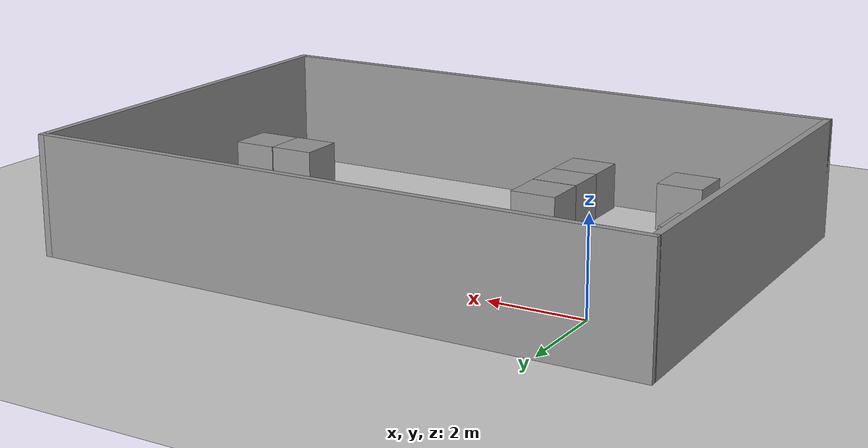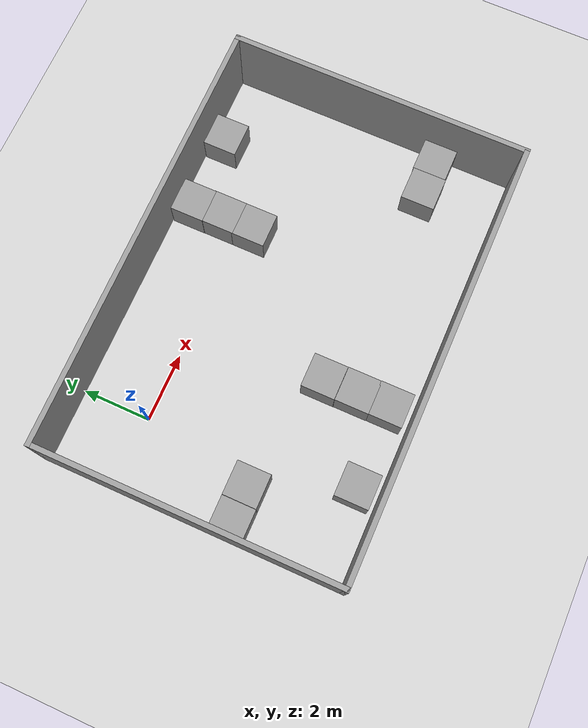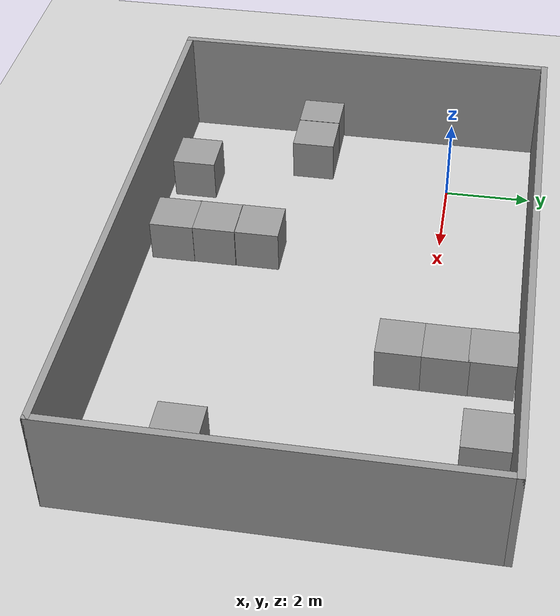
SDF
<sdf version="1.7">
 <world name="default">
  <light name="sun" type="directional">
   <pose>0 0 10 0 -0 0</pose>
   <diffuse>0.8 0.8 0.8 1</diffuse>
   <specular>0.2 0.2 0.2 1</specular>
   <attenuation>
    <range>1000</range>
    <constant>0.9</constant>
    <linear>0.01</linear>
    <quadratic>0.001</quadratic>
   </attenuation>
   <direction>-0.5 0.1 -0.9</direction>
   <spot><inner_angle>0</inner_angle><outer_angle>0</outer_angle><falloff>0</falloff></spot>
  </light>
  <model name="ground_plane">
   <static>1</static>
   <link name="link">
    <collision name="collision">
     <geometry><plane><normal>0 0 1</normal><size>100 100</size></plane></geometry>
     <surface>
      <contact><collide_bitmask>65535</collide_bitmask></contact>
      <friction><ode><mu>100</mu><mu2>50</mu2></ode></friction>
     </surface>
    </collision>
    <visual name="visual">
     <cast_shadows>0</cast_shadows>
     <geometry><plane><normal>0 0 1</normal><size>100 100</size></plane></geometry>
     <material>
      <script><uri>file://media/materials/scripts/gazebo.material</uri><name>Gazebo/Grey</name></script>
     </material>
    </visual>
   </link>
  </model>
  <gravity>0 0 -9.8</gravity>
  <magnetic_field>6e-06 2.3e-05 -4.2e-05</magnetic_field>
  <atmosphere type="adiabatic"/>
  <physics type="ode">
   <max_step_size>0.001</max_step_size>
   <real_time_factor>1</real_time_factor>
   <real_time_update_rate>1000</real_time_update_rate>
  </physics>
  <scene><ambient>0.4 0.4 0.4 1</ambient><background>0.7 0.7 0.7 1</background><shadows>1</shadows></scene>
  <spherical_coordinates>
   <surface_model>EARTH_WGS84</surface_model>
   <latitude_deg>0</latitude_deg>
   <longitude_deg>0</longitude_deg>
   <elevation>0</elevation>
   <heading_deg>0</heading_deg>
  </spherical_coordinates>
  <model name="Big_Wall">
   <pose>4.33163 -1.31472 0 0 -0 1.57</pose>
   <link name="Wall_13">
    <collision name="Wall_13_Collision">
     <geometry><box><size>13 0.15 2.5</size></box></geometry>
     <pose>0 0 1.25 0 -0 0</pose>
    </collision>
    <visual name="Wall_13_Visual">
     <pose>0 0 1.25 0 -0 0</pose>
     <geometry><box><size>13 0.15 2.5</size></box></geometry>
     <material>
      <script><uri>file://media/materials/scripts/gazebo.material</uri><name>Gazebo/Grey</name></script>
      <ambient>1 1 1 1</ambient>
     </material>
     <meta><layer>0</layer></meta>
    </visual>
    <pose>-5.47942 -0 0 0 -0 1.5708</pose>
   </link>
   <link name="Wall_14">
    <collision name="Wall_14_Collision">
     <geometry><box><size>9 0.15 2.5</size></box></geometry>
     <pose>0 0 1.25 0 -0 0</pose>
    </collision>
    <visual name="Wall_14_Visual">
     <pose>0 0 1.25 0 -0 0</pose>
     <geometry><box><size>9 0.15 2.5</size></box></geometry>
     <material>
      <script><uri>file://media/materials/scripts/gazebo.material</uri><name>Gazebo/Grey</name></script>
      <ambient>1 1 1 1</ambient>
     </material>
     <meta><layer>0</layer></meta>
    </visual>
    <pose>-1.05442 6.425 0 0 -0 0</pose>
   </link>
   <link name="Wall_18">
    <collision name="Wall_18_Collision">
     <geometry><box><size>13 0.15 2.5</size></box></geometry>
     <pose>0 0 1.25 0 -0 0</pose>
    </collision>
    <visual name="Wall_18_Visual">
     <pose>0 0 1.25 0 -0 0</pose>
     <geometry><box><size>13 0.15 2.5</size></box></geometry>
     <material>
      <script><uri>file://media/materials/scripts/gazebo.material</uri><name>Gazebo/Grey</name></script>
      <ambient>1 1 1 1</ambient>
     </material>
     <meta><layer>0</layer></meta>
    </visual>
    <pose>3.37059 -0 0 0 -0 -1.5708</pose>
   </link>
   <link name="Wall_20">
    <collision name="Wall_20_Collision">
     <geometry><box><size>9 0.15 2.5</size></box></geometry>
     <pose>0 0 1.25 0 -0 0</pose>
    </collision>
    <visual name="Wall_20_Visual">
     <pose>0 0 1.25 0 -0 0</pose>
     <geometry><box><size>9 0.15 2.5</size></box></geometry>
     <material>
      <script><uri>file://media/materials/scripts/gazebo.material</uri><name>Gazebo/Grey</name></script>
      <ambient>1 1 1 1</ambient>
     </material>
     <meta><layer>0</layer></meta>
    </visual>
    <pose>-1.05442 -6.425 0 0 -0 0</pose>
   </link>
   <static>1</static>
  </model>
  <model name="unit_box">
   <pose>6.19966 1.44935 0.5 0 -0 0</pose>
   <link name="link">
    <inertial>
     <mass>1</mass>
     <inertia>
      <ixx>0.166667</ixx>
      <ixy>0</ixy>
      <ixz>0</ixz>
      <iyy>0.166667</iyy>
      <iyz>0</iyz>
      <izz>0.166667</izz>
     </inertia>
    </inertial>
    <collision name="collision"><geometry><box><size>1 1 1</size></box></geometry></collision>
    <visual name="visual">
     <geometry><box><size>1 1 1</size></box></geometry>
     <material>
      <script><name>Gazebo/Grey</name><uri>file://media/materials/scripts/gazebo.material</uri></script>
     </material>
    </visual>
   </link>
  </model>
  <model name="unit_box_0">
   <pose>6.20658 0.493952 0.5 0 -0 0</pose>
   <link name="link">
    <inertial>
     <mass>1</mass>
     <inertia>
      <ixx>0.166667</ixx>
      <ixy>0</ixy>
      <ixz>0</ixz>
      <iyy>0.166667</iyy>
      <iyz>0</iyz>
      <izz>0.166667</izz>
     </inertia>
    </inertial>
    <collision name="collision"><geometry><box><size>1 1 1</size></box></geometry></collision>
    <visual name="visual">
     <geometry><box><size>1 1 1</size></box></geometry>
     <material>
      <script><name>Gazebo/Grey</name><uri>file://media/materials/scripts/gazebo.material</uri></script>
     </material>
    </visual>
   </link>
  </model>
  <model name="unit_box_1">
   <pose>6.20523 -0.470689 0.5 0 -0 0</pose>
   <link name="link">
    <inertial>
     <mass>1</mass>
     <inertia>
      <ixx>0.166667</ixx>
      <ixy>0</ixy>
      <ixz>0</ixz>
      <iyy>0.166667</iyy>
      <iyz>0</iyz>
      <izz>0.166667</izz>
     </inertia>
    </inertial>
    <collision name="collision"><geometry><box><size>1 1 1</size></box></geometry></collision>
    <visual name="visual">
     <geometry><box><size>1 1 1</size></box></geometry>
     <material>
      <script><name>Gazebo/Grey</name><uri>file://media/materials/scripts/gazebo.material</uri></script>
     </material>
    </visual>
   </link>
  </model>
  <model name="unit_box_2">
   <pose>2.93809 -6.05814 0.5 0 -0 0</pose>
   <link name="link">
    <inertial>
     <mass>1</mass>
     <inertia>
      <ixx>0.166667</ixx>
      <ixy>0</ixy>
      <ixz>0</ixz>
      <iyy>0.166667</iyy>
      <iyz>0</iyz>
      <izz>0.166667</izz>
     </inertia>
    </inertial>
    <collision name="collision"><geometry><box><size>1 1 1</size></box></geometry></collision>
    <visual name="visual">
     <geometry><box><size>1 1 1</size></box></geometry>
     <material>
      <script><name>Gazebo/Grey</name><uri>file://media/materials/scripts/gazebo.material</uri></script>
     </material>
    </visual>
   </link>
  </model>
  <model name="unit_box_3">
   <pose>2.92981 -5.08727 0.5 0 -0 0</pose>
   <link name="link">
    <inertial>
     <mass>1</mass>
     <inertia>
      <ixx>0.166667</ixx>
      <ixy>0</ixy>
      <ixz>0</ixz>
      <iyy>0.166667</iyy>
      <iyz>0</iyz>
      <izz>0.166667</izz>
     </inertia>
    </inertial>
    <collision name="collision"><geometry><box><size>1 1 1</size></box></geometry></collision>
    <visual name="visual">
     <geometry><box><size>1 1 1</size></box></geometry>
     <material>
      <script><name>Gazebo/Grey</name><uri>file://media/materials/scripts/gazebo.material</uri></script>
     </material>
    </visual>
   </link>
  </model>
  <model name="unit_box_4">
   <pose>2.92274 -4.08011 0.5 0 -0 0</pose>
   <link name="link">
    <inertial>
     <mass>1</mass>
     <inertia>
      <ixx>0.166667</ixx>
      <ixy>0</ixy>
      <ixz>0</ixz>
      <iyy>0.166667</iyy>
      <iyz>0</iyz>
      <izz>0.166667</izz>
     </inertia>
    </inertial>
    <collision name="collision"><geometry><box><size>1 1 1</size></box></geometry></collision>
    <visual name="visual">
     <geometry><box><size>1 1 1</size></box></geometry>
     <material>
      <script><name>Gazebo/Grey</name><uri>file://media/materials/scripts/gazebo.material</uri></script>
     </material>
    </visual>
   </link>
  </model>
  <model name="unit_box_5">
   <pose>10.2107 -4.48908 0.5 0 -0 0</pose>
   <link name="link">
    <inertial>
     <mass>1</mass>
     <inertia>
      <ixx>0.166667</ixx>
      <ixy>0</ixy>
      <ixz>0</ixz>
      <iyy>0.166667</iyy>
      <iyz>0</iyz>
      <izz>0.166667</izz>
     </inertia>
    </inertial>
    <collision name="collision"><geometry><box><size>1 1 1</size></box></geometry></collision>
    <visual name="visual">
     <geometry><box><size>1 1 1</size></box></geometry>
     <material>
      <script><name>Gazebo/Grey</name><uri>file://media/materials/scripts/gazebo.material</uri></script>
     </material>
    </visual>
   </link>
  </model>
  <model name="unit_box_6">
   <pose>9.21222 -4.50985 0.5 0 -0 0</pose>
   <link name="link">
    <inertial>
     <mass>1</mass>
     <inertia>
      <ixx>0.166667</ixx>
      <ixy>0</ixy>
      <ixz>0</ixz>
      <iyy>0.166667</iyy>
      <iyz>0</iyz>
      <izz>0.166667</izz>
     </inertia>
    </inertial>
    <collision name="collision"><geometry><box><size>1 1 1</size></box></geometry></collision>
    <visual name="visual">
     <geometry><box><size>1 1 1</size></box></geometry>
     <material>
      <script><name>Gazebo/Grey</name><uri>file://media/materials/scripts/gazebo.material</uri></script>
     </material>
    </visual>
   </link>
  </model>
  <model name="unit_box_7">
   <pose>8.46966 1.4551 0.5 0 -0 0</pose>
   <link name="link">
    <inertial>
     <mass>1</mass>
     <inertia>
      <ixx>0.166667</ixx>
      <ixy>0</ixy>
      <ixz>0</ixz>
      <iyy>0.166667</iyy>
      <iyz>0</iyz>
      <izz>0.166667</izz>
     </inertia>
    </inertial>
    <collision name="collision"><geometry><box><size>1 1 1</size></box></geometry></collision>
    <visual name="visual">
     <geometry><box><size>1 1 1</size></box></geometry>
     <material>
      <script><name>Gazebo/Grey</name><uri>file://media/materials/scripts/gazebo.material</uri></script>
     </material>
    </visual>
   </link>
  </model>
  <model name="unit_box_8">
   <pose>0.546768 -6.07787 0.5 0 -0 0</pose>
   <link name="link">
    <inertial>
     <mass>1</mass>
     <inertia>
      <ixx>0.166667</ixx>
      <ixy>0</ixy>
      <ixz>0</ixz>
      <iyy>0.166667</iyy>
      <iyz>0</iyz>
      <izz>0.166667</izz>
     </inertia>
    </inertial>
    <collision name="collision"><geometry><box><size>1 1 1</size></box></geometry></collision>
    <visual name="visual">
     <geometry><box><size>1 1 1</size></box></geometry>
     <material>
      <script><name>Gazebo/Grey</name><uri>file://media/materials/scripts/gazebo.material</uri></script>
     </material>
    </visual>
   </link>
  </model>
  <model name="unit_box_9">
   <pose>-1.63394 -3.35034 0.5 0 -0 0</pose>
   <link name="link">
    <inertial>
     <mass>1</mass>
     <inertia>
      <ixx>0.166667</ixx>
      <ixy>0</ixy>
      <ixz>0</ixz>
      <iyy>0.166667</iyy>
      <iyz>0</iyz>
      <izz>0.166667</izz>
     </inertia>
    </inertial>
    <collision name="collision"><geometry><box><size>1 1 1</size></box></geometry></collision>
    <visual name="visual">
     <geometry><box><size>1 1 1</size></box></geometry>
     <material>
      <script><name>Gazebo/Grey</name><uri>file://media/materials/scripts/gazebo.material</uri></script>
     </material>
    </visual>
   </link>
  </model>
  <model name="unit_box_10">
   <pose>-0.626676 -3.34786 0.5 0 -0 0</pose>
   <link name="link">
    <inertial>
     <mass>1</mass>
     <inertia>
      <ixx>0.166667</ixx>
      <ixy>0</ixy>
      <ixz>0</ixz>
      <iyy>0.166667</iyy>
      <iyz>0</iyz>
      <izz>0.166667</izz>
     </inertia>
    </inertial>
    <collision name="collision"><geometry><box><size>1 1 1</size></box></geometry></collision>
    <visual name="visual">
     <geometry><box><size>1 1 1</size></box></geometry>
     <material>
      <script><name>Gazebo/Grey</name><uri>file://media/materials/scripts/gazebo.material</uri></script>
     </material>
    </visual>
   </link>
  </model>
 </world>
</sdf>
